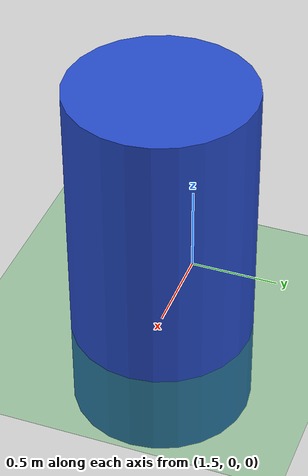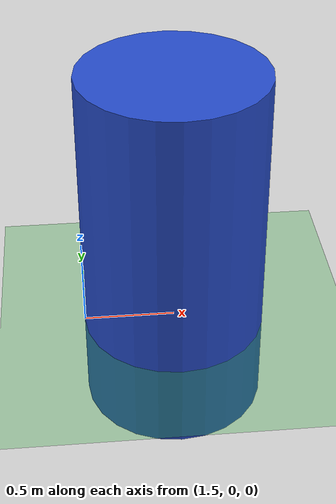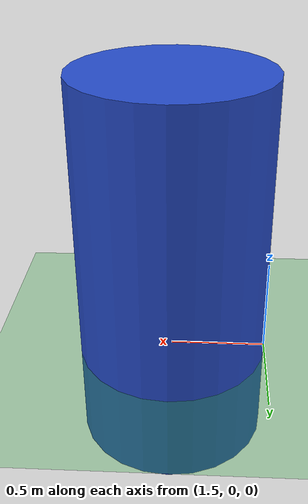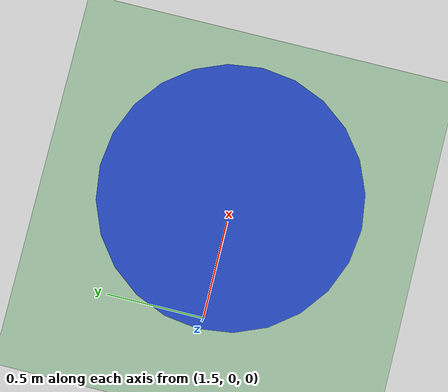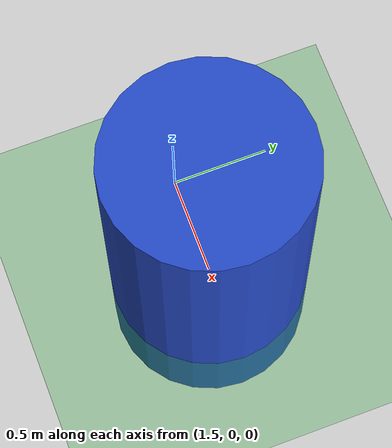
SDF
<?xml version="1.0" ?>
<sdf version="1.6">
  <world name="custom_world">
    <physics type="ode">
      <max_step_size>0.002</max_step_size>
      <real_time_factor>1.2</real_time_factor>
      <real_time_update_rate>800</real_time_update_rate>
    </physics>

    <!-- Ground_surface -->
    <model name="ground_surface">
      <static>true</static>
      <link name="base_link">
        <collision name="base_collision">
          <geometry>
            <plane>
              <normal>0 0 1</normal>
              <size>150 150</size> <!-- Kich Thuoc mat -->
            </plane>
          </geometry>
          <surface>
            <friction>
              <ode>
                <mu>0.8</mu> <!-- He so Ma sat -->
                <mu2>0.7</mu2>
              </ode>
            </friction>
          </surface>
        </collision>
        <visual name="base_visual">
          <geometry>
            <plane>
              <normal>0 0 1</normal>
              <size>150 150</size> <!-- Kich thuoc mat-->
            </plane>
          </geometry>
          <material>
            <script>
              <uri>file://media/materials/scripts/custom.material</uri>
              <name>Custom/Green</name>
            </script>
          </material>
        </visual>
      </link>
    </model>

<!-- Den chieu -->
    <light type="point" name="spotlight">
      <pose>5 5 10 0 0 0</pose> <!-- Den chieu sang -->
      <diffuse>1.0 1.0 0.8 1</diffuse>
      <specular>0.5 0.5 0.5 1</specular>
      <attenuation>
        <range>100.0</range>
        <constant>0.8</constant>
        <linear>0.05</linear>
        <quadratic>0.02</quadratic>
      </attenuation>
    </light>

<!-- Them hinh cau -->
    <model name="cylinder">
  <pose>2 0 0.5 0 0 0</pose>
  <static>true</static>
  <link name="link">
    <collision name="collision">
      <geometry>
        <cylinder>
          <radius>0.5</radius>
          <length>2.0</length>
        </cylinder>
      </geometry>
      <surface>
        <friction>
          <ode>
            <mu>0.5</mu>
            <mu2>0.5</mu2>
          </ode>
        </friction>
      </surface>
    </collision>
    <visual name="visual">
      <geometry>
        <cylinder>
          <radius>0.5</radius>
          <length>2.0</length>
        </cylinder>
      </geometry>
      <material>
        <script>
          <uri>file://media/materials/scripts/gazebo.material</uri>
          <name>Gazebo/Blue</name>
        </script>
      </material>
    </visual>
  </link>
</model>
  </world>
</sdf>
